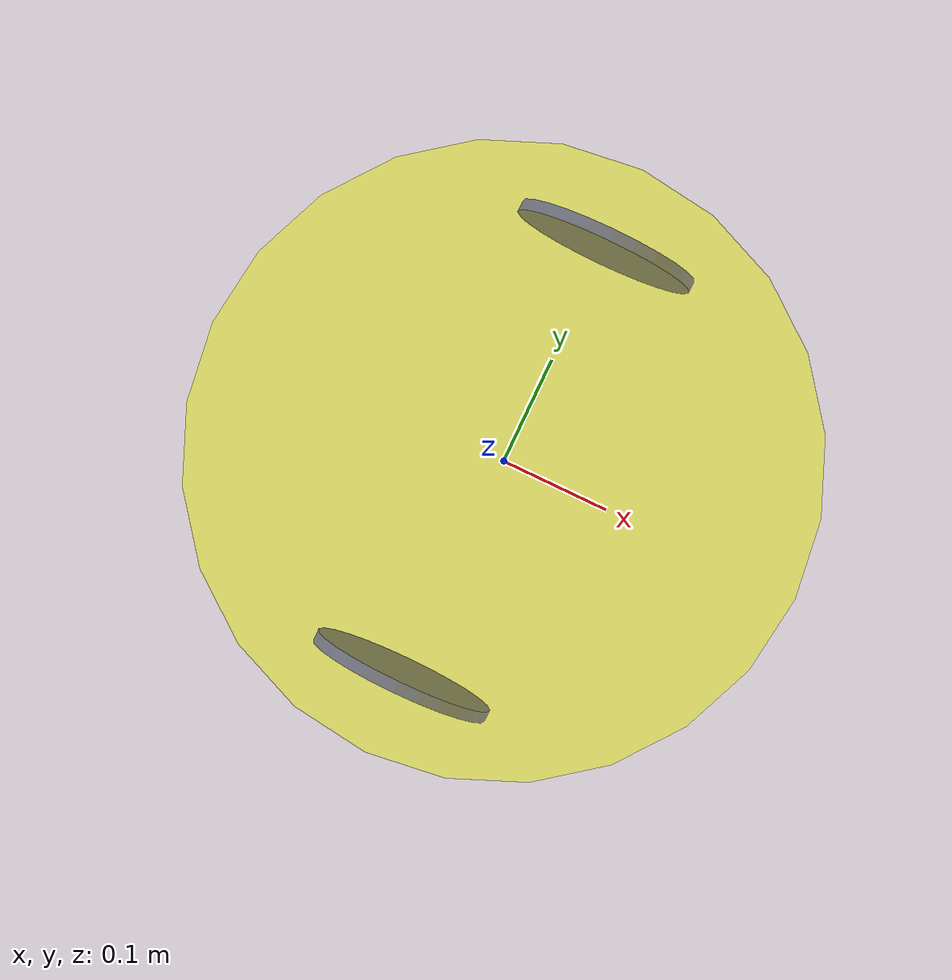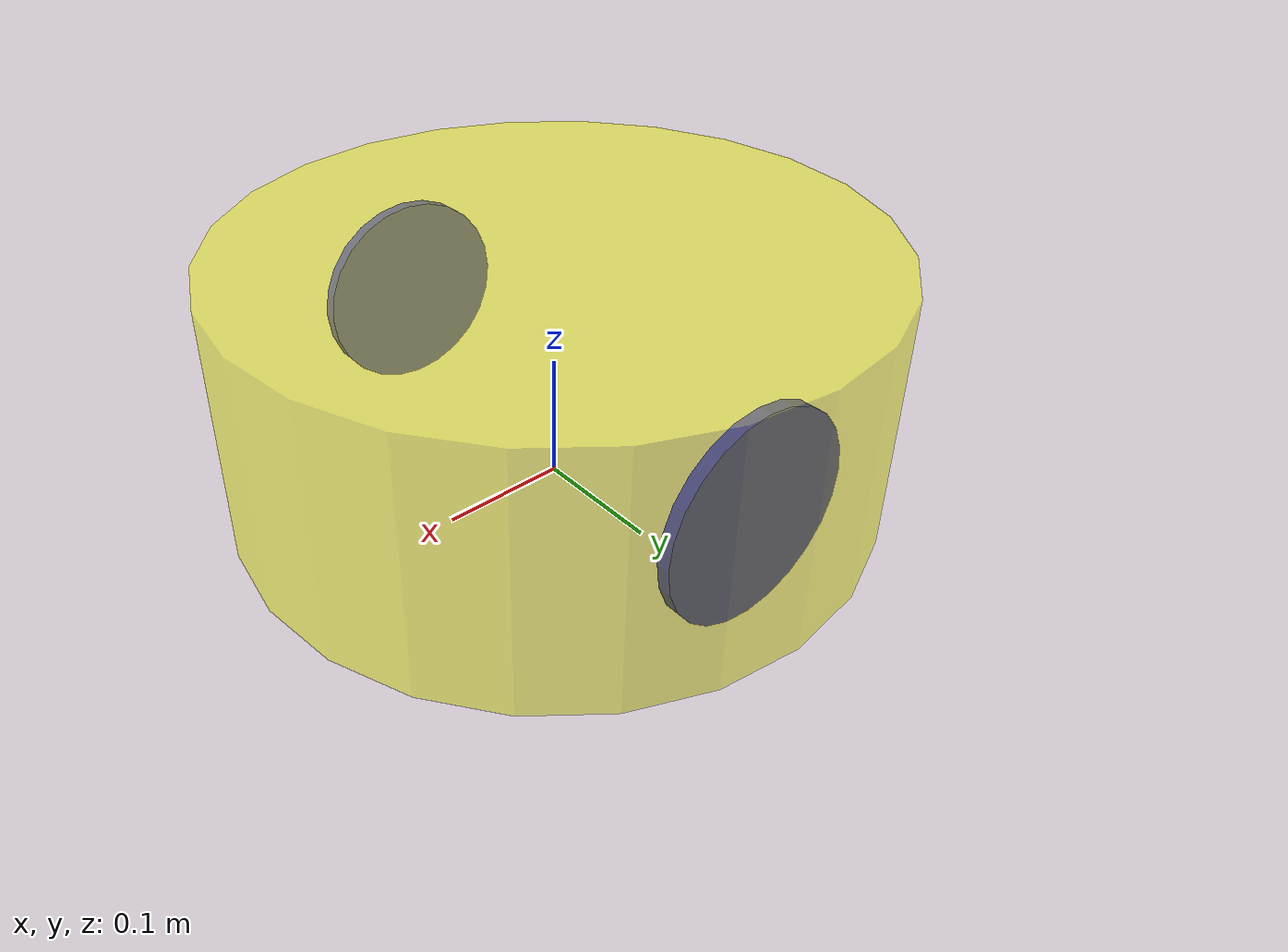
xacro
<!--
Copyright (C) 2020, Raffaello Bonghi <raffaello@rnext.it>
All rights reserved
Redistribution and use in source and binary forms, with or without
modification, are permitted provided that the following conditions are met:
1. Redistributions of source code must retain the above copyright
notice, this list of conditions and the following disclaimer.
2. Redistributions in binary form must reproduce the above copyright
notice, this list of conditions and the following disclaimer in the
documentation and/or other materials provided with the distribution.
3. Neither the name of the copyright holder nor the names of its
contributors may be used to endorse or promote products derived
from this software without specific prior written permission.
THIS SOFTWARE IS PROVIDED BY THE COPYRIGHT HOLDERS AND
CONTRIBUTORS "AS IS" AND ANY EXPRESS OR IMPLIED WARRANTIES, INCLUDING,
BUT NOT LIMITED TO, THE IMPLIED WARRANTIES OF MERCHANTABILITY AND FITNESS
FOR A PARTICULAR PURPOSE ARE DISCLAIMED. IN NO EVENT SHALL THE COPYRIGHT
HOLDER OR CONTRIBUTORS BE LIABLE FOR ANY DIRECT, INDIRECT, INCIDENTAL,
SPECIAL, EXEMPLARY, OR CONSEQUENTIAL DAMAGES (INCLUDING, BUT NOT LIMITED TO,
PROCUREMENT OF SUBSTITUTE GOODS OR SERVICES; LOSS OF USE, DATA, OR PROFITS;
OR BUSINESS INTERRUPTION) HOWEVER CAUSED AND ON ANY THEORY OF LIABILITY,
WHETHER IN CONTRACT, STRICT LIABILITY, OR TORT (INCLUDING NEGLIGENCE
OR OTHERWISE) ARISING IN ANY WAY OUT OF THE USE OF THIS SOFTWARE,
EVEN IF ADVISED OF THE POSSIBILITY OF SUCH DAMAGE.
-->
<?xml version="1.0"?>
<robot name="simple_robot" xmlns:xacro="http://ros.org/wiki/xacro">

    <!-- Arguments -->
    <xacro:arg name="size"   default="0.25"/> <!-- size robot -->
    <xacro:arg name="radius"   default="0.08"/> <!-- radius wheels -->
    <xacro:arg name="wheelbase"   default="0.40"/> <!-- wheelbase differential drive -->
    <!-- Global properties -->
    <xacro:property name="M_PI" value="3.14159"/>
    <xacro:property name="robot_size" value="$(arg size)"/>
    <xacro:property name="wheel_radius" value="$(arg radius)"/>
    <xacro:property name="mwheelbase" value="$(arg wheelbase)"/>

    <link name="base_link">
        <visual>
            <origin xyz="0 0 0.1" rpy="0 0 0" />
            <geometry>
                <cylinder length="0.2" radius="${robot_size}"/>
            </geometry>
            <material name="yellow">
                <color rgba="1 1 0 0.5"/>
            </material>
        </visual>
    </link>

    <link name="left_wheel">
        <visual>
            <geometry>
                <cylinder length=".01" radius="${wheel_radius}"/>
            </geometry>
            <material name="blue">
                <color rgba="0 0 1 1"/>
            </material>
        </visual>
        <collision>
            <origin xyz="0 0 0" rpy="0 0 0" />
            <geometry>
                <cylinder length=".01" radius="${wheel_radius}"/>
            </geometry>
        </collision>
    </link>

    <joint name="left_joint" type="continuous">
        <axis xyz="0 0 1"/>
        <parent link="base_link"/>
        <child link="left_wheel"/>
        <origin rpy="${M_PI/2} 0 0" xyz="0 ${mwheelbase/2} ${wheel_radius}"/>
        <limit effort="100" velocity="100"/>
        <joint_properties damping="0.0" friction="0.0"/>
    </joint>

    <link name="right_wheel">
        <visual>
        <geometry>
            <cylinder length=".01" radius="${wheel_radius}"/>
        </geometry>
            <material name="blue">
                <color rgba="0 0 1 1"/>
            </material>
        </visual>
        <collision>
            <origin xyz="0 0 0" rpy="0 0 0" />
            <geometry>
                <cylinder length=".01" radius="${wheel_radius}"/>
            </geometry>
        </collision>
    </link>

    <joint name="right_joint" type="continuous">
        <axis xyz="0 0 1"/>
        <parent link="base_link"/>
        <child link="right_wheel"/>
        <origin rpy="${M_PI/2} 0 0" xyz="0 -${mwheelbase/2} ${wheel_radius}"/>
        <limit effort="100" velocity="100"/>
        <joint_properties damping="0.0" friction="0.0"/>
    </joint>

</robot>
